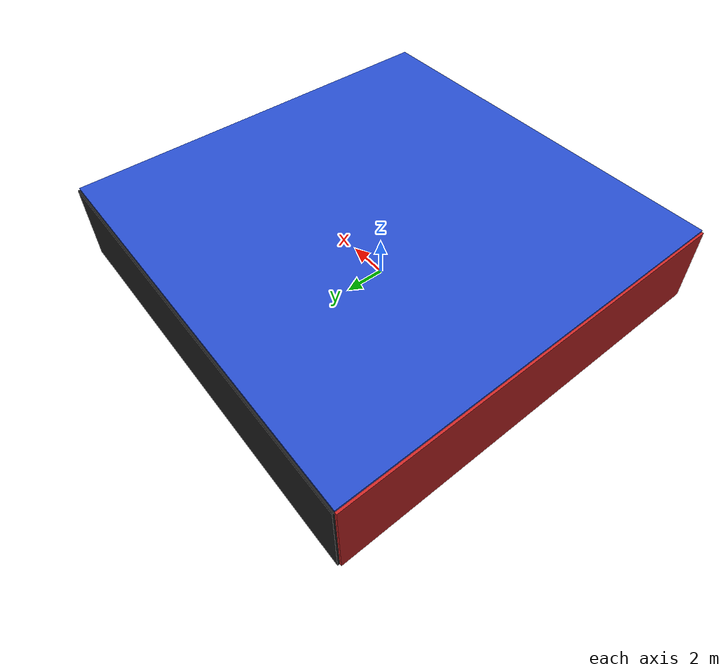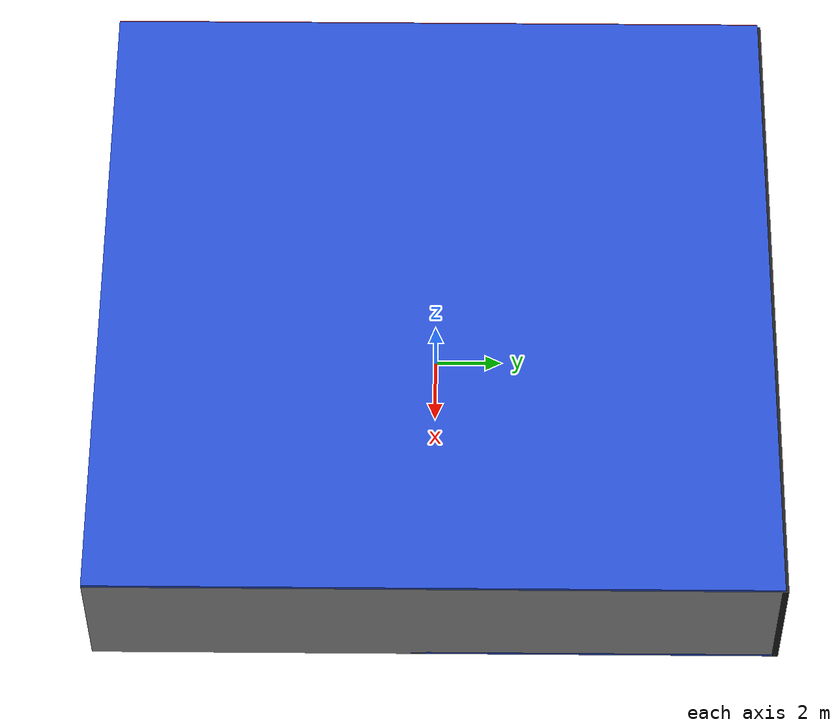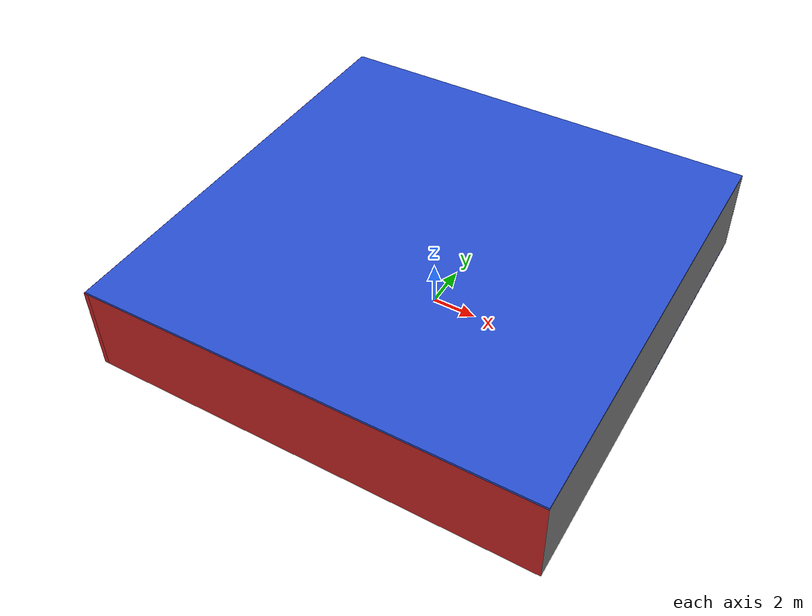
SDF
<sdf version="1.4">
 <world name="default">
  <physics type="ode">
   <max_step_size>0.001</max_step_size>
   <real_time_factor>1</real_time_factor>
   <real_time_update_rate>1000</real_time_update_rate>
   <gravity>0 0 -9.8</gravity>
  </physics>
  <scene><ambient>0.4 0.4 0.4 1</ambient><background>0.7 0.7 0.7 1</background><shadows>1</shadows></scene>
  <model name="Surrounding">
   <static>1</static>
   <link name="Ceiling">
    <collision name="Ceiling_Collision"><geometry><box><size>20 20 0.1</size></box></geometry></collision>
    <visual name="Ceiling_Visual">
     <geometry><box><size>20 20 0.1</size></box></geometry>
     <material>
      <script><uri>file://media/materials/scripts/gazebo.material</uri><name>Gazebo/BlueLaser</name></script>
     </material>
    </visual>
    <pose>0 0 4.05 0 0 0</pose>
   </link>
   <link name="Wall_South">
    <collision name="Wall_South_Collision">
     <geometry><box><size>20 0 4</size></box></geometry>
     <pose>0 0 2 0 -0 0</pose>
    </collision>
    <visual name="Wall_South_Visual">
     <pose>0 0 2 0 -0 0</pose>
     <geometry><box><size>20 0 4</size></box></geometry>
     <material>
      <script><uri>file://media/materials/scripts/gazebo.material</uri><name>Gazebo/RedBright</name></script>
     </material>
    </visual>
    <velocity_decay><linear>0</linear><angular>0</angular></velocity_decay>
    <pose>0 -10 0 0 -0 0</pose>
   </link>
   <link name="Wall_East">
    <collision name="Wall_21_Collision">
     <geometry><box><size>20 0 4</size></box></geometry>
     <pose>0 0 2 0 -0 0</pose>
    </collision>
    <visual name="Wall_21_Visual">
     <pose>0 0 2 0 -0 0</pose>
     <geometry><box><size>20 0 4</size></box></geometry>
     <material>
      <script><uri>file://media/materials/scripts/gazebo.material</uri><name>Gazebo/Grey</name></script>
     </material>
    </visual>
    <velocity_decay><linear>0</linear><angular>0</angular></velocity_decay>
    <pose>10 0 0 0 -0 1.5708</pose>
   </link>
   <link name="Wall_North">
    <collision name="Wall_22_Collision">
     <geometry><box><size>20 0.2 4</size></box></geometry>
     <pose>0 0 2 0 -0 0</pose>
    </collision>
    <visual name="Wall_22_Visual">
     <pose>0 0 2 0 -0 0</pose>
     <geometry><box><size>20 0.2 4</size></box></geometry>
     <material>
      <script><uri>file://media/materials/scripts/gazebo.material</uri><name>Gazebo/Black</name></script>
     </material>
    </visual>
    <velocity_decay><linear>0</linear><angular>0</angular></velocity_decay>
    <pose>0 10 0 0 -0 0</pose>
   </link>
   <link name="Wall_West">
    <collision name="Wall_23_Collision">
     <geometry><box><size>20 0.2 4</size></box></geometry>
     <pose>0 0 2 0 -0 0</pose>
    </collision>
    <visual name="Wall_23_Visual">
     <pose>0 0 2 0 -0 0</pose>
     <geometry><box><size>20 0.2 4</size></box></geometry>
     <material>
      <script><uri>file://media/materials/scripts/gazebo.material</uri><name>Gazebo/RedGlow</name></script>
     </material>
    </visual>
    <velocity_decay><linear>0</linear><angular>0</angular></velocity_decay>
    <pose>-10 0 0 0 0 -1.5708</pose>
   </link>
   <link name="Ground_link">
    <collision name="collision">
     <pose>0 0 .05 0 -0 0</pose>
     <geometry><box><size>20 20 0.1</size></box></geometry>
    </collision>
    <visual name="visual">
     <pose>0 0 .05 0 -0 0</pose>
     <geometry><box><size>20 20 0.1</size></box></geometry>
     <material>
      <script><uri>file://media/materials/scripts/gazebo.material</uri><name>Gazebo/BlueGlow</name></script>
     </material>
    </visual>
   </link>
   <static>1</static>
  </model>
  <spherical_coordinates>
   <surface_model>EARTH_WGS84</surface_model>
   <latitude_deg>0</latitude_deg>
   <longitude_deg>0</longitude_deg>
   <elevation>0</elevation>
   <heading_deg>0</heading_deg>
  </spherical_coordinates>
  <light name="lightball_0" type="diffuse">
   <diffuse>0.8 0.8 0.8 1</diffuse>
   <specular>0.2 0.2 0.2 1</specular>
   <attenuation>
    <range>100</range>
    <constant>0.7</constant>
    <linear>0.01</linear>
    <quadratic>0.001</quadratic>
   </attenuation>
   <direction>-0.5 0.1 -0.9</direction>
   <pose>7.86903535289 -7.41858570171 2.67274365331 0 0 0</pose>
  </light>
  <light name="lightball_1" type="diffuse">
   <diffuse>0.8 0.8 0.8 1</diffuse>
   <specular>0.2 0.2 0.2 1</specular>
   <attenuation>
    <range>100</range>
    <constant>0.7</constant>
    <linear>0.01</linear>
    <quadratic>0.001</quadratic>
   </attenuation>
   <direction>-0.5 0.1 -0.9</direction>
   <pose>-0.919582066998 -0.938860284908 3.37982353369 0 0 0</pose>
  </light>
  <light name="lightball_2" type="diffuse">
   <diffuse>0.8 0.8 0.8 1</diffuse>
   <specular>0.2 0.2 0.2 1</specular>
   <attenuation>
    <range>100</range>
    <constant>0.7</constant>
    <linear>0.01</linear>
    <quadratic>0.001</quadratic>
   </attenuation>
   <direction>-0.5 0.1 -0.9</direction>
   <pose>-3.00685862897 -7.8849709399 1.63328860344 0 0 0</pose>
  </light>
  <light name="lightball_3" type="diffuse">
   <diffuse>0.8 0.8 0.8 1</diffuse>
   <specular>0.2 0.2 0.2 1</specular>
   <attenuation>
    <range>100</range>
    <constant>0.7</constant>
    <linear>0.01</linear>
    <quadratic>0.001</quadratic>
   </attenuation>
   <direction>-0.5 0.1 -0.9</direction>
   <pose>-9.71620896401 -3.46578696391 2.71383068586 0 0 0</pose>
  </light>
  <light name="lightball_4" type="diffuse">
   <diffuse>0.8 0.8 0.8 1</diffuse>
   <specular>0.2 0.2 0.2 1</specular>
   <attenuation>
    <range>100</range>
    <constant>0.7</constant>
    <linear>0.01</linear>
    <quadratic>0.001</quadratic>
   </attenuation>
   <direction>-0.5 0.1 -0.9</direction>
   <pose>-6.98215521804 -3.00723710309 1.57942076239 0 0 0</pose>
  </light>
  <light name="lightball_5" type="diffuse">
   <diffuse>0.8 0.8 0.8 1</diffuse>
   <specular>0.2 0.2 0.2 1</specular>
   <attenuation>
    <range>100</range>
    <constant>0.7</constant>
    <linear>0.01</linear>
    <quadratic>0.001</quadratic>
   </attenuation>
   <direction>-0.5 0.1 -0.9</direction>
   <pose>-7.94668504156 1.69782376464 3.41486760171 0 0 0</pose>
  </light>
  <light name="lightball_6" type="diffuse">
   <diffuse>0.8 0.8 0.8 1</diffuse>
   <specular>0.2 0.2 0.2 1</specular>
   <attenuation>
    <range>100</range>
    <constant>0.7</constant>
    <linear>0.01</linear>
    <quadratic>0.001</quadratic>
   </attenuation>
   <direction>-0.5 0.1 -0.9</direction>
   <pose>-1.71722500841 -6.22405168736 1.68057525518 0 0 0</pose>
  </light>
  <light name="lightball_7" type="diffuse">
   <diffuse>0.8 0.8 0.8 1</diffuse>
   <specular>0.2 0.2 0.2 1</specular>
   <attenuation>
    <range>100</range>
    <constant>0.7</constant>
    <linear>0.01</linear>
    <quadratic>0.001</quadratic>
   </attenuation>
   <direction>-0.5 0.1 -0.9</direction>
   <pose>7.00219829764 3.25708211513 0.622541293133 0 0 0</pose>
  </light>
  <light name="lightball_8" type="diffuse">
   <diffuse>0.8 0.8 0.8 1</diffuse>
   <specular>0.2 0.2 0.2 1</specular>
   <attenuation>
    <range>100</range>
    <constant>0.7</constant>
    <linear>0.01</linear>
    <quadratic>0.001</quadratic>
   </attenuation>
   <direction>-0.5 0.1 -0.9</direction>
   <pose>-9.74532249964 1.02970622698 2.71624878511 0 0 0</pose>
  </light>
  <light name="lightball_9" type="diffuse">
   <diffuse>0.8 0.8 0.8 1</diffuse>
   <specular>0.2 0.2 0.2 1</specular>
   <attenuation>
    <range>100</range>
    <constant>0.7</constant>
    <linear>0.01</linear>
    <quadratic>0.001</quadratic>
   </attenuation>
   <direction>-0.5 0.1 -0.9</direction>
   <pose>6.983378117 2.9458204912 2.34240352869 0 0 0</pose>
  </light>
  <light name="lightball_10" type="diffuse">
   <diffuse>0.8 0.8 0.8 1</diffuse>
   <specular>0.2 0.2 0.2 1</specular>
   <attenuation>
    <range>100</range>
    <constant>0.7</constant>
    <linear>0.01</linear>
    <quadratic>0.001</quadratic>
   </attenuation>
   <direction>-0.5 0.1 -0.9</direction>
   <pose>7.04813416705 -7.77195348991 1.49612318514 0 0 0</pose>
  </light>
  <light name="lightball_11" type="diffuse">
   <diffuse>0.8 0.8 0.8 1</diffuse>
   <specular>0.2 0.2 0.2 1</specular>
   <attenuation>
    <range>100</range>
    <constant>0.7</constant>
    <linear>0.01</linear>
    <quadratic>0.001</quadratic>
   </attenuation>
   <direction>-0.5 0.1 -0.9</direction>
   <pose>-5.23156490497 9.06902100106 0.854285703261 0 0 0</pose>
  </light>
  <light name="lightball_12" type="diffuse">
   <diffuse>0.8 0.8 0.8 1</diffuse>
   <specular>0.2 0.2 0.2 1</specular>
   <attenuation>
    <range>100</range>
    <constant>0.7</constant>
    <linear>0.01</linear>
    <quadratic>0.001</quadratic>
   </attenuation>
   <direction>-0.5 0.1 -0.9</direction>
   <pose>7.92699502326 -8.05255011224 2.85085570999 0 0 0</pose>
  </light>
  <include>
   <uri>model://robocup_3Dsim_goal</uri>
   <pose>-8.55295855123 -6.59598135742 0 0 0 0.23252395261</pose>
  </include>
  <include><uri>model://cabinet</uri><pose>-7.01296292841 -4.80067884564 0 0 0 0.824460534132</pose></include>
  <include><uri>model://cabinet</uri><pose>-4.52837086097 -1.17496346899 0 0 0 2.52653823335</pose></include>
  <include><uri>model://table</uri><pose>0.61717727773 -3.97190696358 0 0 0 1.76121845321</pose></include>
  <include><uri>model://cabinet</uri><pose>8.14136761631 -6.5118938508 0 0 0 1.17545990829</pose></include>
  <include><uri>model://cabinet</uri><pose>8.36326870871 1.47513257815 0 0 0 1.24981165197</pose></include>
 </world>
</sdf>

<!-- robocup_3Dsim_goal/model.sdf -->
<sdf version="1.5">
  <model name="robocup_3d_goal">
    <static>true</static>
    <link name="left_post">
      <pose>0 1.05 0.45 0 0 0</pose>
      <collision name="collision">
        <geometry>
          <cylinder>
            <radius>0.05</radius>
            <length>0.9</length>
          </cylinder>
        </geometry>
      </collision>
      <visual name="visual">
        <geometry>
          <cylinder>
            <radius>0.05</radius>
            <length>0.9</length>
          </cylinder>
        </geometry>
        <material>
          <script>
            <uri>file://media/materials/scripts/gazebo.material</uri>
            <name>Gazebo/ZincYellow</name>
          </script>
        </material>
      </visual>
    </link>
    <link name="left_support_horiz_lower">
      <pose>0.30 1.05 0.01 0 0 0</pose>
      <collision name="collision">
        <geometry>
          <box>
            <size>0.50 0.02 0.02</size>
          </box>
        </geometry>
      </collision>
      <visual name="visual">
        <geometry>
          <box>
            <size>0.50 0.02 0.02</size>
          </box>
        </geometry>
        <material>
          <script>
            <uri>file://media/materials/scripts/gazebo.material</uri>
            <name>Gazebo/White</name>
          </script>
        </material>
      </visual>
    </link>
    <link name="left_support_horiz_upper">
      <pose>0.30 1.05 0.79 0 0 0</pose>
      <collision name="collision">
        <geometry>
          <box>
            <size>0.50 0.02 0.02</size>
          </box>
        </geometry>
      </collision>
      <visual name="visual">
        <geometry>
          <box>
            <size>0.50 0.02 0.02</size>
          </box>
        </geometry>
        <material>
          <script>
            <uri>file://media/materials/scripts/gazebo.material</uri>
            <name>Gazebo/White</name>
          </script>
        </material>
      </visual>
    </link>
    <link name="left_support_vertical">
      <pose>0.56 1.05 0.4 0 1.5708 0</pose>
      <collision name="collision">
        <geometry>
          <box>
            <size>0.80 0.02 0.02</size>
          </box>
        </geometry>
      </collision>
      <visual name="visual">
        <geometry>
          <box>
            <size>0.80 0.02 0.02</size>
          </box>
        </geometry>
        <material>
          <script>
            <uri>file://media/materials/scripts/gazebo.material</uri>
            <name>Gazebo/White</name>
          </script>
        </material>
      </visual>
    </link>
    <link name="right_support_horiz_lower">
      <pose>0.30 -1.05 0.01 0 0 0</pose>
      <collision name="collision">
        <geometry>
          <box>
            <size>0.50 0.02 0.02</size>
          </box>
        </geometry>
      </collision>
      <visual name="visual">
        <geometry>
          <box>
            <size>0.50 0.02 0.02</size>
          </box>
        </geometry>
        <material>
          <script>
            <uri>file://media/materials/scripts/gazebo.material</uri>
            <name>Gazebo/White</name>
          </script>
        </material>
      </visual>
    </link>
    <link name="right_support_horiz_upper">
      <pose>0.30 -1.05 0.79 0 0 0</pose>
      <collision name="collision">
        <geometry>
          <box>
            <size>0.50 0.02 0.02</size>
          </box>
        </geometry>
      </collision>
      <visual name="visual">
        <geometry>
          <box>
            <size>0.50 0.02 0.02</size>
          </box>
        </geometry>
        <material>
          <script>
            <uri>file://media/materials/scripts/gazebo.material</uri>
            <name>Gazebo/White</name>
          </script>
        </material>
      </visual>
    </link>
    <link name="right_support_vertical">
      <pose>0.56 -1.05 0.4 0 1.5708 0</pose>
      <collision name="collision">
        <geometry>
          <box>
            <size>0.80 0.02 0.02</size>
          </box>
        </geometry>
      </collision>
      <visual name="visual">
        <geometry>
          <box>
            <size>0.80 0.02 0.02</size>
          </box>
        </geometry>
        <material>
          <script>
            <uri>file://media/materials/scripts/gazebo.material</uri>
            <name>Gazebo/White</name>
          </script>
        </material>
      </visual>
    </link>
    <link name="center_support_horiz_lower">
      <pose>0.56 0 0.01 0 1.5708 0</pose>
      <collision name="collision">
        <geometry>
          <box>
            <size>0.02 2.08 0.02</size>
          </box>
        </geometry>
      </collision>
      <visual name="visual">
        <geometry>
          <box>
            <size>0.02 2.08 0.02</size>
          </box>
        </geometry>
        <material>
          <script>
            <uri>file://media/materials/scripts/gazebo.material</uri>
            <name>Gazebo/White</name>
          </script>
        </material>
      </visual>
    </link>
    <link name="center_support_horiz_upper">
      <pose>0.56 0 0.79 0 1.5708 0</pose>
      <collision name="collision">
        <geometry>
          <box>
            <size>0.02 2.08 0.02</size>
          </box>
        </geometry>
      </collision>
      <visual name="visual">
        <geometry>
          <box>
            <size>0.02 2.08 0.02</size>
          </box>
        </geometry>
        <material>
          <script>
            <uri>file://media/materials/scripts/gazebo.material</uri>
            <name>Gazebo/White</name>
          </script>
        </material>
      </visual>
    </link>
    <link name="right_post">
      <pose>0 -1.05 0.45 0 0 0</pose>
      <collision name="collision">
        <geometry>
          <cylinder>
            <radius>0.05</radius>
            <length>0.9</length>
          </cylinder>
        </geometry>
      </collision>
      <visual name="visual">
        <geometry>
          <cylinder>
            <radius>0.05</radius>
            <length>0.9</length>
          </cylinder>
        </geometry>
        <material>
          <script>
            <uri>file://media/materials/scripts/gazebo.material</uri>
            <name>Gazebo/ZincYellow</name>
          </script>
        </material>
      </visual>
    </link>
    <link name="crossbar">
      <pose>0 0 0.85 1.57 1.57 0</pose>
      <collision name="collision">
        <geometry>
          <cylinder>
            <radius>0.05</radius>
            <length>2.0</length>
          </cylinder>
        </geometry>
      </collision>
      <visual name="visual">
        <geometry>
          <cylinder>
            <radius>0.05</radius>
            <length>2.0</length>
          </cylinder>
        </geometry>
        <material>
          <script>
            <uri>file://media/materials/scripts/gazebo.material</uri>
            <name>Gazebo/ZincYellow</name>
          </script>
        </material>
      </visual>
    </link>
    <link name="center_net">
      <pose>0.56 0 0.40 0 0 0</pose>
      <collision name="collision">
        <geometry>
          <box>
            <size>0.01 2.1 0.80</size>
          </box>
        </geometry>
      </collision>
      <visual name="visual">
        <geometry>
          <box>
            <size>0.01 2.1 0.80</size>
          </box>
        </geometry>
        <material>
          <script>
            <uri>model://../model_source/models/robocup09_spl_field/materials/scripts/</uri>
            <uri>model://../model_source/models/robocup09_spl_field/materials/textures/</uri>
            <name>RoboCup/Net</name>
          </script>
        </material>
      </visual>
    </link>
    <link name="left_net">
      <pose>0.30 1.05 0.40 0 0 0</pose>
      <collision name="collision">
        <geometry>
          <box>
            <size>0.50 0.01 0.76</size>
          </box>
        </geometry>
      </collision>
      <visual name="visual">
        <geometry>
          <box>
            <size>0.50 0.01 0.76</size>
          </box>
        </geometry>
        <material>
          <script>
            <uri>model://../model_source/models/robocup09_spl_field/materials/scripts/</uri>
            <uri>model://../model_source/models/robocup09_spl_field/materials/textures/</uri>
            <name>RoboCup/Net</name>
          </script>
        </material>
      </visual>
    </link>
    <link name="right_net">
      <pose>0.30 -1.05 0.40 0 0 0</pose>
      <collision name="collision">
        <geometry>
          <box>
            <size>0.50 0.01 0.76</size>
          </box>
        </geometry>
      </collision>
      <visual name="visual">
        <geometry>
          <box>
            <size>0.50 0.01 0.76</size>
          </box>
        </geometry>
        <material>
          <script>
            <uri>model://../model_source/models/robocup09_spl_field/materials/scripts/</uri>
            <uri>model://../model_source/models/robocup09_spl_field/materials/textures/</uri>
            <name>RoboCup/Net</name>
          </script>
        </material>
      </visual>
    </link>
  </model>
</sdf>

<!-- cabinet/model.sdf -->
<sdf version="1.5">
  <model name="cabinet">
    <static>true</static>
    <link name="cabinet_bottom_plate">
      <inertial>
        <pose>0 0 -1 0 0 0</pose>
        <inertia>
          <ixx>2.050000</ixx>
          <ixy>0</ixy>
          <ixz>0</ixz>
          <iyy>2.050000</iyy>
          <iyz>0</iyz>
          <izz>2.050000</izz>
        </inertia>
        <mass>25.000000</mass>
      </inertial>
      <collision name="cabinet_bottom_plate_geom">
        <pose>0 0 0.010000 0 0 0</pose>
        <geometry>
          <box>
            <size>0.450000 0.450000 0.020000</size>
          </box>
        </geometry>
      </collision>
      <visual name="cabinet_bottom_plate_geom_visual">
        <pose>0 0 0.010000 0 0 0</pose>
        <geometry>
          <box>
            <size>0.450000 0.450000 0.020000</size>
          </box>
        </geometry>
        <material>
          <script>
            <uri>model://media/materials/scripts/gazebo.material</uri>
            <name>Gazebo/Wood</name>
          </script>
        </material>
      </visual>
      <collision name="cabinet_bottom_plate_geom_cabinet_back_plate">
        <pose>0.235000 0 0.510000 0 0 0</pose>
        <geometry>
          <box>
            <size>0.020000 0.450000 1.020000</size>
          </box>
        </geometry>
      </collision>
      <visual name="cabinet_bottom_plate_geom_cabinet_back_plate_visual">
        <pose>0.235000 0 0.510000 0 0 0</pose>
        <geometry>
          <box>
            <size>0.020000 0.450000 1.020000</size>
          </box>
        </geometry>
        <material>
          <script>
            <uri>model://media/materials/scripts/gazebo.material</uri>
            <name>Gazebo/Wood</name>
          </script>
        </material>
      </visual>
      <collision name="cabinet_bottom_plate_geom_cabinet_left_plate">
        <pose>0 0.235000 0.510000 0 0 0</pose>
        <geometry>
          <box>
            <size>0.450000 0.020000 1.020000</size>
          </box>
        </geometry>
      </collision>
      <visual name="cabinet_bottom_plate_geom_cabinet_left_plate_visual">
        <pose>0 0.235000 0.510000 0 0 0</pose>
        <geometry>
          <box>
            <size>0.450000 0.020000 1.020000</size>
          </box>
        </geometry>
        <material>
          <script>
            <uri>model://media/materials/scripts/gazebo.material</uri>
            <name>Gazebo/Wood</name>
          </script>
        </material>
      </visual>
      <collision name="cabinet_bottom_plate_geom_cabinet_middle_plate">
        <pose>0 0 0.510000 0 0 0</pose>
        <geometry>
          <box>
            <size>0.450000 0.450000 0.020000</size>
          </box>
        </geometry>
      </collision>
      <visual name="cabinet_bottom_plate_geom_cabinet_middle_plate_visual">
        <pose>0 0 0.510000 0 0 0</pose>
        <geometry>
          <box>
            <size>0.450000 0.450000 0.020000</size>
          </box>
        </geometry>
        <material>
          <script>
            <uri>model://media/materials/scripts/gazebo.material</uri>
            <name>Gazebo/Wood</name>
          </script>
        </material>
      </visual>
      <collision name="cabinet_bottom_plate_geom_cabinet_right_plate">
        <pose>0 -0.235000 0.510000 0 0 0</pose>
        <geometry>
          <box>
            <size>0.450000 0.020000 1.020000</size>
          </box>
        </geometry>
      </collision>
      <visual name="cabinet_bottom_plate_geom_cabinet_right_plate_visual">
        <pose>0 -0.235000 0.510000 0 0 0</pose>
        <geometry>
          <box>
            <size>0.450000 0.020000 1.020000</size>
          </box>
        </geometry>
        <material>
          <script>
            <uri>model://media/materials/scripts/gazebo.material</uri>
            <name>Gazebo/Wood</name>
          </script>
        </material>
      </visual>
      <collision name="cabinet_bottom_plate_geom_cabinet_top_plate">
        <pose>0 0 1.010000 0 0 0</pose>
        <geometry>
          <box>
            <size>0.450000 0.450000 0.020000</size>
          </box>
        </geometry>
      </collision>
      <visual name="cabinet_bottom_plate_geom_cabinet_top_plate_visual">
        <pose>0 0 1.010000 0 0 0</pose>
        <geometry>
          <box>
            <size>0.450000 0.450000 0.020000</size>
          </box>
        </geometry>
        <material>
          <script>
            <uri>model://media/materials/scripts/gazebo.material</uri>
            <name>Gazebo/Wood</name>
          </script>
        </material>
      </visual>
    </link>
  </model>
</sdf>

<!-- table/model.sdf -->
<sdf version="1.5">
  <model name="table">
    <static>true</static>
    <link name="link">
      <collision name="surface">
        <pose>0 0 1.0 0 0 0</pose>
        <geometry>
          <box>
            <size>1.5 0.8 0.03</size>
          </box>
        </geometry>
        <surface>
          <friction>
            <ode>
              <mu>0.6</mu>
              <mu2>0.6</mu2>
            </ode>
          </friction>
        </surface>
      </collision>
      <visual name="visual1">
        <pose>0 0 1.0 0 0 0</pose>
        <geometry>
          <box>
            <size>1.5 0.8 0.03</size>
          </box>
        </geometry>
        <material>
          <script>
            <uri>model://media/materials/scripts/gazebo.material</uri>
            <name>Gazebo/Wood</name>
          </script>
        </material>
      </visual>
      <collision name="front_left_leg">
        <pose>0.68 0.38 0.5 0 0 0</pose>
        <geometry>
          <cylinder>
            <radius>0.02</radius>
            <length>1.0</length>
          </cylinder>
        </geometry>
      </collision>
      <visual name="front_left_leg">
        <pose>0.68 0.38 0.5 0 0 0</pose>
        <geometry>
          <cylinder>
            <radius>0.02</radius>
            <length>1.0</length>
          </cylinder>
        </geometry>
        <material>
          <script>
            <uri>model://media/materials/scripts/gazebo.material</uri>
            <name>Gazebo/Grey</name>
          </script>
        </material>
      </visual>
      <collision name="front_right_leg">
        <pose>0.68 -0.38 0.5 0 0 0</pose>
        <geometry>
          <cylinder>
            <radius>0.02</radius>
            <length>1.0</length>
          </cylinder>
        </geometry>
      </collision>
      <visual name="front_right_leg">
        <pose>0.68 -0.38 0.5 0 0 0</pose>
        <geometry>
          <cylinder>
            <radius>0.02</radius>
            <length>1.0</length>
          </cylinder>
        </geometry>
        <material>
          <script>
            <uri>model://media/materials/scripts/gazebo.material</uri>
            <name>Gazebo/Grey</name>
          </script>
        </material>
      </visual>
      <collision name="back_right_leg">
        <pose>-0.68 -0.38 0.5 0 0 0</pose>
        <geometry>
          <cylinder>
            <radius>0.02</radius>
            <length>1.0</length>
          </cylinder>
        </geometry>
      </collision>
      <visual name="back_right_leg">
        <pose>-0.68 -0.38 0.5 0 0 0</pose>
        <geometry>
          <cylinder>
            <radius>0.02</radius>
            <length>1.0</length>
          </cylinder>
        </geometry>
        <material>
          <script>
            <uri>model://media/materials/scripts/gazebo.material</uri>
            <name>Gazebo/Grey</name>
          </script>
        </material>
      </visual>
      <collision name="back_left_leg">
        <pose>-0.68 0.38 0.5 0 0 0</pose>
        <geometry>
          <cylinder>
            <radius>0.02</radius>
            <length>1.0</length>
          </cylinder>
        </geometry>
      </collision>
      <visual name="back_left_leg">
        <pose>-0.68 0.38 0.5 0 0 0</pose>
        <geometry>
          <cylinder>
            <radius>0.02</radius>
            <length>1.0</length>
          </cylinder>
        </geometry>
        <material>
          <script>
            <uri>model://media/materials/scripts/gazebo.material</uri>
            <name>Gazebo/Grey</name>
          </script>
        </material>
      </visual>
    </link>
  </model>
</sdf>
